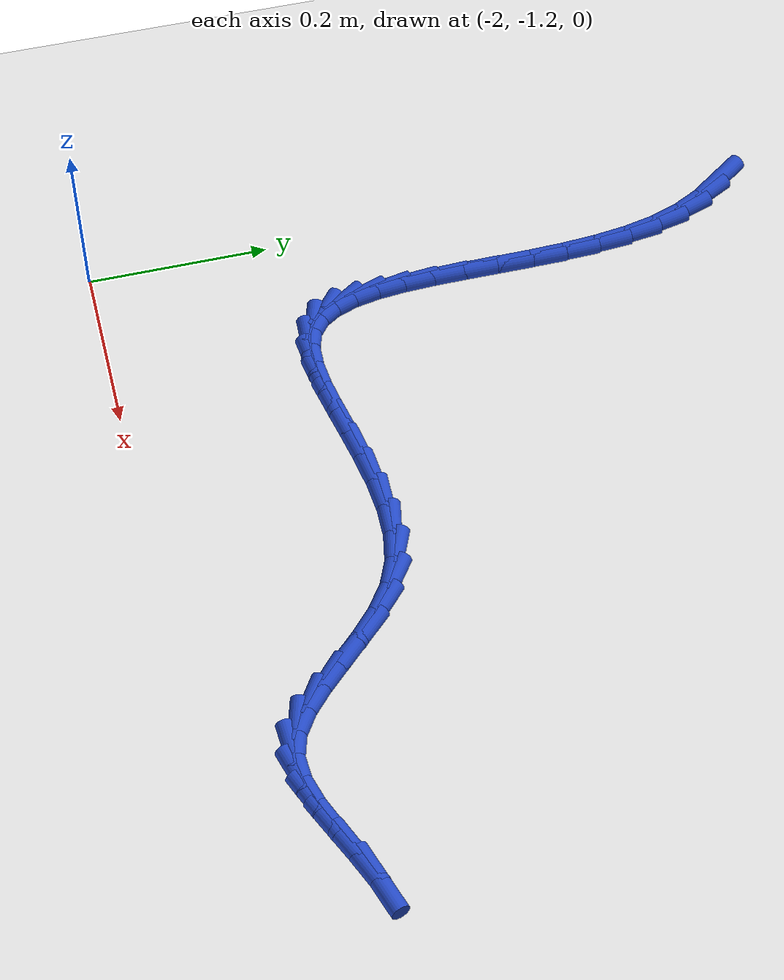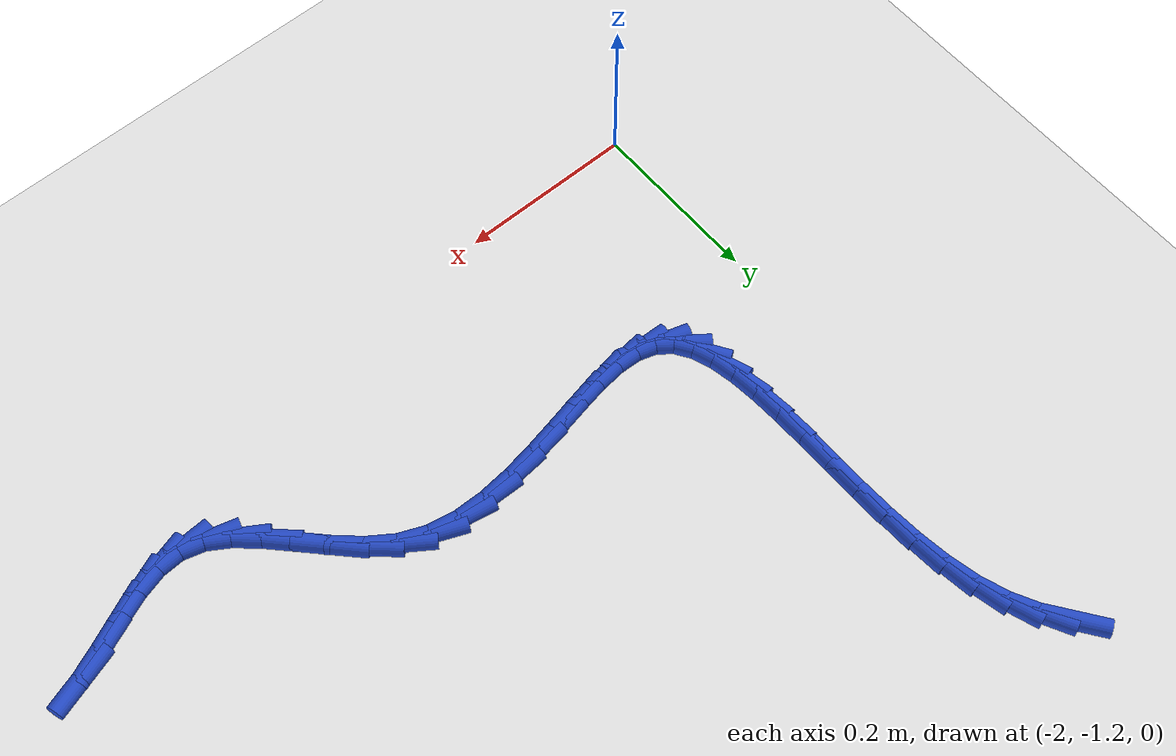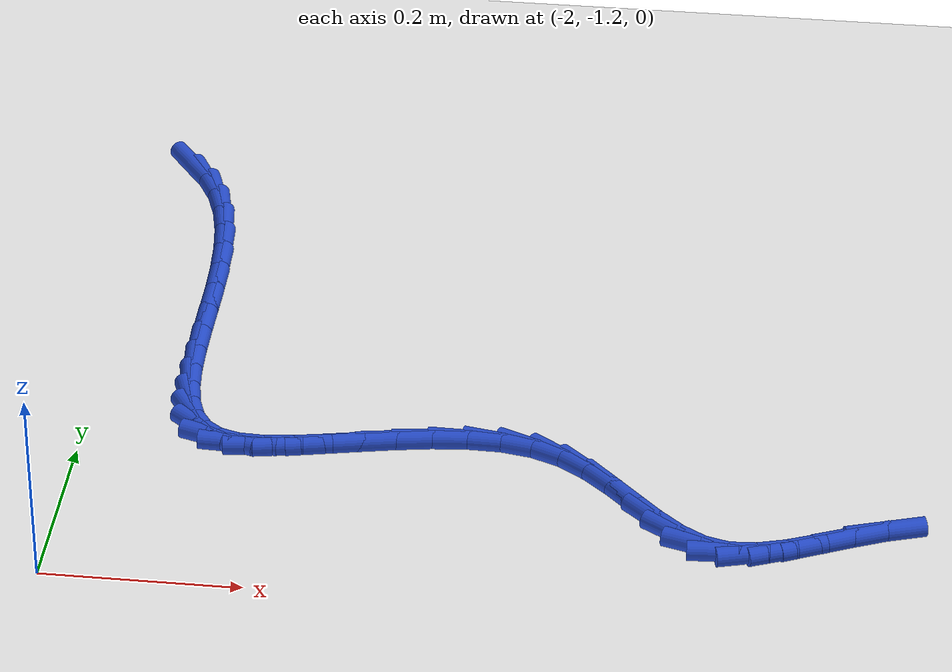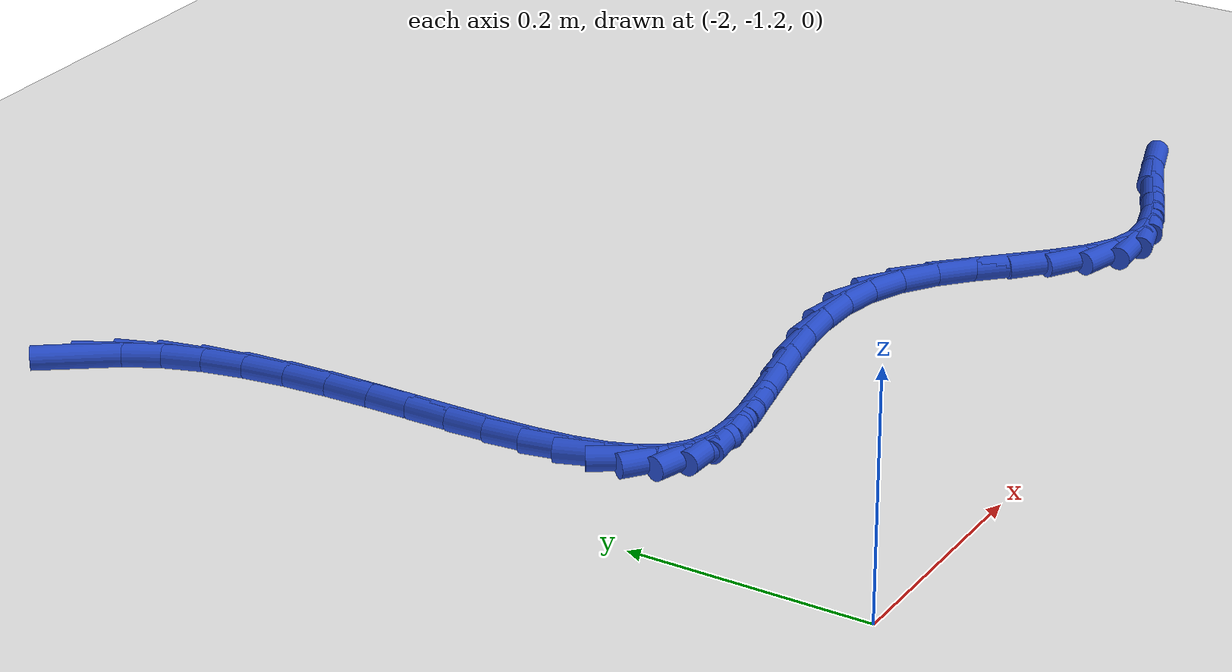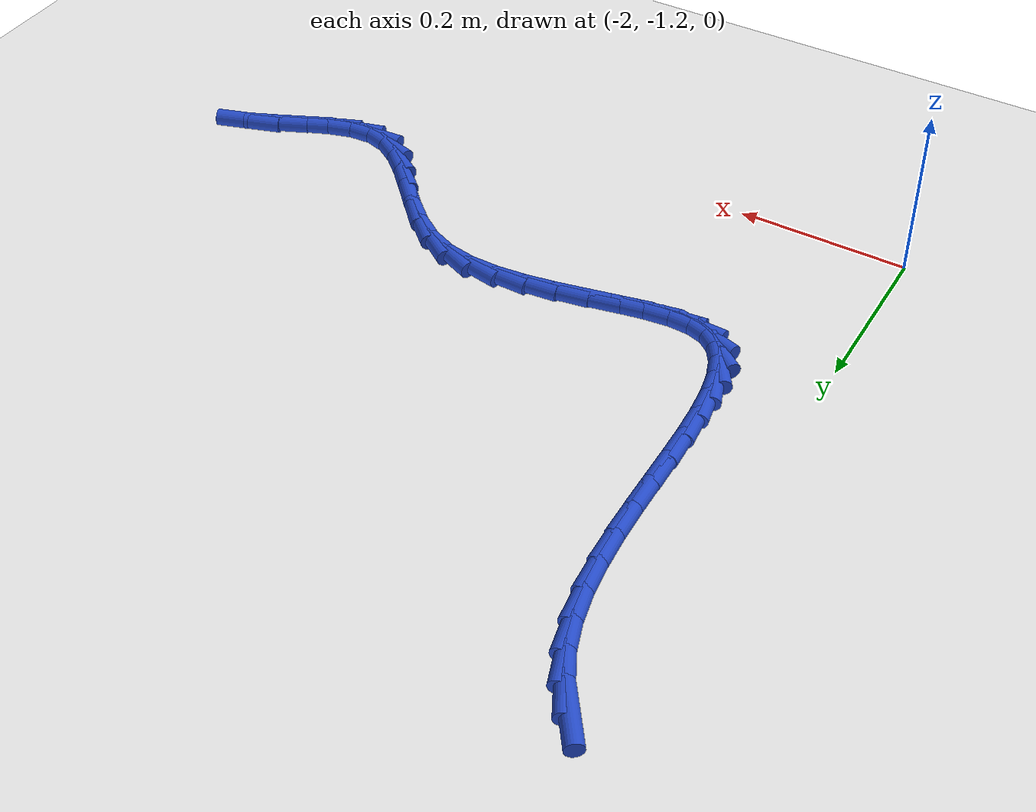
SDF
<sdf version="1.6">
 <world name="default">
  <model name="ground_plane">
   <static>1</static>
   <link name="link">
    <collision name="collision">
     <geometry><plane><normal>0 0 1</normal><size>100 100</size></plane></geometry>
     <surface><friction><ode><mu>100</mu><mu2>50</mu2></ode></friction></surface>
    </collision>
    <visual name="visual">
     <cast_shadows>0</cast_shadows>
     <geometry><plane><normal>0 0 1</normal><size>100 100</size></plane></geometry>
     <material>
      <script><uri>file://media/materials/scripts/gazebo.material</uri><name>Gazebo/WhiteGlow</name></script>
     </material>
    </visual>
   </link>
  </model>
  <model name="line">
   <link name="link_144">
    <pose>-1.9700768346649906 -0.47930693510490385 0.01 0 1.57 -0.944026588098812</pose>
    <collision name="collision">
     <geometry><cylinder><radius>0.01</radius><length>0.08</length></cylinder></geometry>
    </collision>
    <visual name="visual">
     <material>
      <script><name>Gazebo/Blue</name><uri>file://media/materials/scripts/gazebo.material</uri></script>
     </material>
     <geometry><cylinder><radius>0.01</radius><length>0.08</length></cylinder></geometry>
    </visual>
   </link>
   <link name="link_145">
    <pose>-1.9513391072345336 -0.5051813825997775 0.01 0 1.57 -1.0889664984056158</pose>
    <collision name="collision">
     <geometry><cylinder><radius>0.01</radius><length>0.08</length></cylinder></geometry>
    </collision>
    <visual name="visual">
     <material>
      <script><name>Gazebo/Blue</name><uri>file://media/materials/scripts/gazebo.material</uri></script>
     </material>
     <geometry><cylinder><radius>0.01</radius><length>0.08</length></cylinder></geometry>
    </visual>
   </link>
   <link name="link_146">
    <pose>-1.9362185127895413 -0.5340960342596621 0.01 0 1.57 -1.2381353585981523</pose>
    <collision name="collision">
     <geometry><cylinder><radius>0.01</radius><length>0.08</length></cylinder></geometry>
    </collision>
    <visual name="visual">
     <material>
      <script><name>Gazebo/Blue</name><uri>file://media/materials/scripts/gazebo.material</uri></script>
     </material>
     <geometry><cylinder><radius>0.01</radius><length>0.08</length></cylinder></geometry>
    </visual>
   </link>
   <link name="link_147">
    <pose>-1.9250966259106952 -0.5662866645914484 0.01 0 1.57 -1.354333770220363</pose>
    <collision name="collision">
     <geometry><cylinder><radius>0.01</radius><length>0.08</length></cylinder></geometry>
    </collision>
    <visual name="visual">
     <material>
      <script><name>Gazebo/Blue</name><uri>file://media/materials/scripts/gazebo.material</uri></script>
     </material>
     <geometry><cylinder><radius>0.01</radius><length>0.08</length></cylinder></geometry>
    </visual>
   </link>
   <link name="link_148">
    <pose>-1.9174304028462414 -0.6011477103152719 0.01 0 1.57 -1.4398178696771071</pose>
    <collision name="collision">
     <geometry><cylinder><radius>0.01</radius><length>0.08</length></cylinder></geometry>
    </collision>
    <visual name="visual">
     <material>
      <script><name>Gazebo/Blue</name><uri>file://media/materials/scripts/gazebo.material</uri></script>
     </material>
     <geometry><cylinder><radius>0.01</radius><length>0.08</length></cylinder></geometry>
    </visual>
   </link>
   <link name="link_149">
    <pose>-1.9125779108935348 -0.6379836261466344 0.01 0 1.57 -1.5005806712463832</pose>
    <collision name="collision">
     <geometry><cylinder><radius>0.01</radius><length>0.08</length></cylinder></geometry>
    </collision>
    <visual name="visual">
     <material>
      <script><name>Gazebo/Blue</name><uri>file://media/materials/scripts/gazebo.material</uri></script>
     </material>
     <geometry><cylinder><radius>0.01</radius><length>0.08</length></cylinder></geometry>
    </visual>
   </link>
   <link name="link_150">
    <pose>-1.9098972173499311 -0.6760988668010363 0.01 0 1.57 -1.5410671819976716</pose>
    <collision name="collision">
     <geometry><cylinder><radius>0.01</radius><length>0.08</length></cylinder></geometry>
    </collision>
    <visual name="visual">
     <material>
      <script><name>Gazebo/Blue</name><uri>file://media/materials/scripts/gazebo.material</uri></script>
     </material>
     <geometry><cylinder><radius>0.01</radius><length>0.08</length></cylinder></geometry>
    </visual>
   </link>
   <link name="link_151">
    <pose>-1.9087463895127863 -0.7147978869939785 0.01 0 1.57 -1.5639834356052433</pose>
    <collision name="collision">
     <geometry><cylinder><radius>0.01</radius><length>0.08</length></cylinder></geometry>
    </collision>
    <visual name="visual">
     <material>
      <script><name>Gazebo/Blue</name><uri>file://media/materials/scripts/gazebo.material</uri></script>
     </material>
     <geometry><cylinder><radius>0.01</radius><length>0.08</length></cylinder></geometry>
    </visual>
   </link>
   <link name="link_152">
    <pose>-1.908483494679455 -0.7533851414409619 0.01 0 1.57 -1.570349144255475</pose>
    <collision name="collision">
     <geometry><cylinder><radius>0.01</radius><length>0.08</length></cylinder></geometry>
    </collision>
    <visual name="visual">
     <material>
      <script><name>Gazebo/Blue</name><uri>file://media/materials/scripts/gazebo.material</uri></script>
     </material>
     <geometry><cylinder><radius>0.01</radius><length>0.08</length></cylinder></geometry>
    </visual>
   </link>
   <link name="link_153">
    <pose>-1.9084666001472927 -0.7911650848574869 0.01 0 1.57 -1.5594169921354328</pose>
    <collision name="collision">
     <geometry><cylinder><radius>0.01</radius><length>0.08</length></cylinder></geometry>
    </collision>
    <visual name="visual">
     <material>
      <script><name>Gazebo/Blue</name><uri>file://media/materials/scripts/gazebo.material</uri></script>
     </material>
     <geometry><cylinder><radius>0.01</radius><length>0.08</length></cylinder></geometry>
    </visual>
   </link>
   <link name="link_154">
    <pose>-1.9080537732136553 -0.8274421719590546 0.01 0 1.57 -1.5282531155101458</pose>
    <collision name="collision">
     <geometry><cylinder><radius>0.01</radius><length>0.08</length></cylinder></geometry>
    </collision>
    <visual name="visual">
     <material>
      <script><name>Gazebo/Blue</name><uri>file://media/materials/scripts/gazebo.material</uri></script>
     </material>
     <geometry><cylinder><radius>0.01</radius><length>0.08</length></cylinder></geometry>
    </visual>
   </link>
   <link name="link_155">
    <pose>-1.9066030811758978 -0.8615208574611664 0.01 0 1.57 -1.470746187760136</pose>
    <collision name="collision">
     <geometry><cylinder><radius>0.01</radius><length>0.08</length></cylinder></geometry>
    </collision>
    <visual name="visual">
     <material>
      <script><name>Gazebo/Blue</name><uri>file://media/materials/scripts/gazebo.material</uri></script>
     </material>
     <geometry><cylinder><radius>0.01</radius><length>0.08</length></cylinder></geometry>
    </visual>
   </link>
   <link name="link_156">
    <pose>-1.903472591331376 -0.8927055960793212 0.01 0 1.57 -1.3757304586446777</pose>
    <collision name="collision">
     <geometry><cylinder><radius>0.01</radius><length>0.08</length></cylinder></geometry>
    </collision>
    <visual name="visual">
     <material>
      <script><name>Gazebo/Blue</name><uri>file://media/materials/scripts/gazebo.material</uri></script>
     </material>
     <geometry><cylinder><radius>0.01</radius><length>0.08</length></cylinder></geometry>
    </visual>
   </link>
   <link name="link_157">
    <pose>-1.8980203709774446 -0.9203008425290207 0.01 0 1.57 -1.224321673040869</pose>
    <collision name="collision">
     <geometry><cylinder><radius>0.01</radius><length>0.08</length></cylinder></geometry>
    </collision>
    <visual name="visual">
     <material>
      <script><name>Gazebo/Blue</name><uri>file://media/materials/scripts/gazebo.material</uri></script>
     </material>
     <geometry><cylinder><radius>0.01</radius><length>0.08</length></cylinder></geometry>
    </visual>
   </link>
   <link name="link_158">
    <pose>-1.8896044874114597 -0.9436110515257657 0.01 0 1.57 -0.990319840100151</pose>
    <collision name="collision">
     <geometry><cylinder><radius>0.01</radius><length>0.08</length></cylinder></geometry>
    </collision>
    <visual name="visual">
     <material>
      <script><name>Gazebo/Blue</name><uri>file://media/materials/scripts/gazebo.material</uri></script>
     </material>
     <geometry><cylinder><radius>0.01</radius><length>0.08</length></cylinder></geometry>
    </visual>
   </link>
   <link name="link_159">
    <pose>-1.8775830079307767 -0.9619406777850571 0.01 0 1.57 -0.6610364770215414</pose>
    <collision name="collision">
     <geometry><cylinder><radius>0.01</radius><length>0.08</length></cylinder></geometry>
    </collision>
    <visual name="visual">
     <material>
      <script><name>Gazebo/Blue</name><uri>file://media/materials/scripts/gazebo.material</uri></script>
     </material>
     <geometry><cylinder><radius>0.01</radius><length>0.08</length></cylinder></geometry>
    </visual>
   </link>
   <link name="link_160">
    <pose>-1.8613139998327506 -0.9745941760223951 0.01 0 1.57 -0.29840996526860125</pose>
    <collision name="collision">
     <geometry><cylinder><radius>0.01</radius><length>0.08</length></cylinder></geometry>
    </collision>
    <visual name="visual">
     <material>
      <script><name>Gazebo/Blue</name><uri>file://media/materials/scripts/gazebo.material</uri></script>
     </material>
     <geometry><cylinder><radius>0.01</radius><length>0.08</length></cylinder></geometry>
    </visual>
   </link>
   <link name="link_161">
    <pose>-1.8402849842392806 -0.98106259441665 0.01 0 1.57 -0.042119388394122194</pose>
    <collision name="collision">
     <geometry><cylinder><radius>0.01</radius><length>0.08</length></cylinder></geometry>
    </collision>
    <visual name="visual">
     <material>
      <script><name>Gazebo/Blue</name><uri>file://media/materials/scripts/gazebo.material</uri></script>
     </material>
     <geometry><cylinder><radius>0.01</radius><length>0.08</length></cylinder></geometry>
    </visual>
   </link>
   <link name="link_162">
    <pose>-1.8148827347472671 -0.9821331547773025 0.01 0 1.57 0.10271678603291168</pose>
    <collision name="collision">
     <geometry><cylinder><radius>0.01</radius><length>0.08</length></cylinder></geometry>
    </collision>
    <visual name="visual">
     <material>
      <script><name>Gazebo/Blue</name><uri>file://media/materials/scripts/gazebo.material</uri></script>
     </material>
     <geometry><cylinder><radius>0.01</radius><length>0.08</length></cylinder></geometry>
    </visual>
   </link>
   <link name="link_163">
    <pose>-1.7858756258428814 -0.979143114664451 0.01 0 1.57 0.1774780551305565</pose>
    <collision name="collision">
     <geometry><cylinder><radius>0.01</radius><length>0.08</length></cylinder></geometry>
    </collision>
    <visual name="visual">
     <material>
      <script><name>Gazebo/Blue</name><uri>file://media/materials/scripts/gazebo.material</uri></script>
     </material>
     <geometry><cylinder><radius>0.01</radius><length>0.08</length></cylinder></geometry>
    </visual>
   </link>
   <link name="link_164">
    <pose>-1.7540334173929164 -0.9734317285121362 0.01 0 1.57 0.20622638900077636</pose>
    <collision name="collision">
     <geometry><cylinder><radius>0.01</radius><length>0.08</length></cylinder></geometry>
    </collision>
    <visual name="visual">
     <material>
      <script><name>Gazebo/Blue</name><uri>file://media/materials/scripts/gazebo.material</uri></script>
     </material>
     <geometry><cylinder><radius>0.01</radius><length>0.08</length></cylinder></geometry>
    </visual>
   </link>
   <link name="link_165">
    <pose>-1.7201258692641657 -0.9663382507544002 0.01 0 1.57 0.20000784764928978</pose>
    <collision name="collision">
     <geometry><cylinder><radius>0.01</radius><length>0.08</length></cylinder></geometry>
    </collision>
    <visual name="visual">
     <material>
      <script><name>Gazebo/Blue</name><uri>file://media/materials/scripts/gazebo.material</uri></script>
     </material>
     <geometry><cylinder><radius>0.01</radius><length>0.08</length></cylinder></geometry>
    </visual>
   </link>
   <link name="link_166">
    <pose>-1.6849227413234233 -0.9592019358252837 0.01 0 1.57 0.1620173554596145</pose>
    <collision name="collision">
     <geometry><cylinder><radius>0.01</radius><length>0.08</length></cylinder></geometry>
    </collision>
    <visual name="visual">
     <material>
      <script><name>Gazebo/Blue</name><uri>file://media/materials/scripts/gazebo.material</uri></script>
     </material>
     <geometry><cylinder><radius>0.01</radius><length>0.08</length></cylinder></geometry>
    </visual>
   </link>
   <link name="link_167">
    <pose>-1.649193793437484 -0.9533620381588283 0.01 0 1.57 0.09005379205441533</pose>
    <collision name="collision">
     <geometry><cylinder><radius>0.01</radius><length>0.08</length></cylinder></geometry>
    </collision>
    <visual name="visual">
     <material>
      <script><name>Gazebo/Blue</name><uri>file://media/materials/scripts/gazebo.material</uri></script>
     </material>
     <geometry><cylinder><radius>0.01</radius><length>0.08</length></cylinder></geometry>
    </visual>
   </link>
   <link name="link_168">
    <pose>-1.613708785473141 -0.9501578121890749 0.01 0 1.57 -0.022354004653145527</pose>
    <collision name="collision">
     <geometry><cylinder><radius>0.01</radius><length>0.08</length></cylinder></geometry>
    </collision>
    <visual name="visual">
     <material>
      <script><name>Gazebo/Blue</name><uri>file://media/materials/scripts/gazebo.material</uri></script>
     </material>
     <geometry><cylinder><radius>0.01</radius><length>0.08</length></cylinder></geometry>
    </visual>
   </link>
   <link name="link_169">
    <pose>-1.5792374772971889 -0.9509285123500653 0.01 0 1.57 -0.18404459621812996</pose>
    <collision name="collision">
     <geometry><cylinder><radius>0.01</radius><length>0.08</length></cylinder></geometry>
    </collision>
    <visual name="visual">
     <material>
      <script><name>Gazebo/Blue</name><uri>file://media/materials/scripts/gazebo.material</uri></script>
     </material>
     <geometry><cylinder><radius>0.01</radius><length>0.08</length></cylinder></geometry>
    </visual>
   </link>
   <link name="link_170">
    <pose>-1.5465496287764204 -0.9570133930758407 0.01 0 1.57 -0.3985870076889187</pose>
    <collision name="collision">
     <geometry><cylinder><radius>0.01</radius><length>0.08</length></cylinder></geometry>
    </collision>
    <visual name="visual">
     <material>
      <script><name>Gazebo/Blue</name><uri>file://media/materials/scripts/gazebo.material</uri></script>
     </material>
     <geometry><cylinder><radius>0.01</radius><length>0.08</length></cylinder></geometry>
    </visual>
   </link>
   <link name="link_171">
    <pose>-1.516399110580523 -0.969710639846206 0.01 0 1.57 -0.6062478120387922</pose>
    <collision name="collision">
     <geometry><cylinder><radius>0.01</radius><length>0.08</length></cylinder></geometry>
    </collision>
    <visual name="visual">
     <material>
      <script><name>Gazebo/Blue</name><uri>file://media/materials/scripts/gazebo.material</uri></script>
     </material>
     <geometry><cylinder><radius>0.01</radius><length>0.08</length></cylinder></geometry>
    </visual>
   </link>
   <link name="link_172">
    <pose>-1.4889342717464589 -0.9887533407950746 0.01 0 1.57 -0.7379388366511566</pose>
    <collision name="collision">
     <geometry><cylinder><radius>0.01</radius><length>0.08</length></cylinder></geometry>
    </collision>
    <visual name="visual">
     <material>
      <script><name>Gazebo/Blue</name><uri>file://media/materials/scripts/gazebo.material</uri></script>
     </material>
     <geometry><cylinder><radius>0.01</radius><length>0.08</length></cylinder></geometry>
    </visual>
   </link>
   <link name="link_173">
    <pose>-1.4635238368054337 -1.011859481409628 0.01 0 1.57 -0.8000707131232063</pose>
    <collision name="collision">
     <geometry><cylinder><radius>0.01</radius><length>0.08</length></cylinder></geometry>
    </collision>
    <visual name="visual">
     <material>
      <script><name>Gazebo/Blue</name><uri>file://media/materials/scripts/gazebo.material</uri></script>
     </material>
     <geometry><cylinder><radius>0.01</radius><length>0.08</length></cylinder></geometry>
    </visual>
   </link>
   <link name="link_174">
    <pose>-1.4394851218759301 -1.0366141713787893 0.01 0 1.57 -0.7988890394531069</pose>
    <collision name="collision">
     <geometry><cylinder><radius>0.01</radius><length>0.08</length></cylinder></geometry>
    </collision>
    <visual name="visual">
     <material>
      <script><name>Gazebo/Blue</name><uri>file://media/materials/scripts/gazebo.material</uri></script>
     </material>
     <geometry><cylinder><radius>0.01</radius><length>0.08</length></cylinder></geometry>
    </visual>
   </link>
   <link name="link_175">
    <pose>-1.4161354430764304 -1.0606025203914813 0.01 0 1.57 -0.7280165307194267</pose>
    <collision name="collision">
     <geometry><cylinder><radius>0.01</radius><length>0.08</length></cylinder></geometry>
    </collision>
    <visual name="visual">
     <material>
      <script><name>Gazebo/Blue</name><uri>file://media/materials/scripts/gazebo.material</uri></script>
     </material>
     <geometry><cylinder><radius>0.01</radius><length>0.08</length></cylinder></geometry>
    </visual>
   </link>
   <link name="link_176">
    <pose>-1.3927921165254165 -1.0814096381366274 0.01 0 1.57 -0.5645261878851303</pose>
    <collision name="collision">
     <geometry><cylinder><radius>0.01</radius><length>0.08</length></cylinder></geometry>
    </collision>
    <visual name="visual">
     <material>
      <script><name>Gazebo/Blue</name><uri>file://media/materials/scripts/gazebo.material</uri></script>
     </material>
     <geometry><cylinder><radius>0.01</radius><length>0.08</length></cylinder></geometry>
    </visual>
   </link>
   <link name="link_177">
    <pose>-1.3687724583413707 -1.0966206343031508 0.01 0 1.57 -0.2772234976692953</pose>
    <collision name="collision">
     <geometry><cylinder><radius>0.01</radius><length>0.08</length></cylinder></geometry>
    </collision>
    <visual name="visual">
     <material>
      <script><name>Gazebo/Blue</name><uri>file://media/materials/scripts/gazebo.material</uri></script>
     </material>
     <geometry><cylinder><radius>0.01</radius><length>0.08</length></cylinder></geometry>
    </visual>
   </link>
   <link name="link_178">
    <pose>-1.343397596233113 -1.1038410673483599 0.01 0 1.57 0.055571053297356114</pose>
    <collision name="collision">
     <geometry><cylinder><radius>0.01</radius><length>0.08</length></cylinder></geometry>
    </collision>
    <visual name="visual">
     <material>
      <script><name>Gazebo/Blue</name><uri>file://media/materials/scripts/gazebo.material</uri></script>
     </material>
     <geometry><cylinder><radius>0.01</radius><length>0.08</length></cylinder></geometry>
    </visual>
   </link>
   <link name="link_179">
    <pose>-1.3162975252940252 -1.1023335357183677 0.01 0 1.57 0.27608020893672863</pose>
    <collision name="collision">
     <geometry><cylinder><radius>0.01</radius><length>0.08</length></cylinder></geometry>
    </collision>
    <visual name="visual">
     <material>
      <script><name>Gazebo/Blue</name><uri>file://media/materials/scripts/gazebo.material</uri></script>
     </material>
     <geometry><cylinder><radius>0.01</radius><length>0.08</length></cylinder></geometry>
    </visual>
   </link>
   <link name="link_180">
    <pose>-1.2876338533638123 -1.0942126825336065 0.01 0 1.57 0.39002027302882</pose>
    <collision name="collision">
     <geometry><cylinder><radius>0.01</radius><length>0.08</length></cylinder></geometry>
    </collision>
    <visual name="visual">
     <material>
      <script><name>Gazebo/Blue</name><uri>file://media/materials/scripts/gazebo.material</uri></script>
     </material>
     <geometry><cylinder><radius>0.01</radius><length>0.08</length></cylinder></geometry>
    </visual>
   </link>
   <link name="link_181">
    <pose>-1.257620709381029 -1.0818749209083631 0.01 0 1.57 0.4266236012007524</pose>
    <collision name="collision">
     <geometry><cylinder><radius>0.01</radius><length>0.08</length></cylinder></geometry>
    </collision>
    <visual name="visual">
     <material>
      <script><name>Gazebo/Blue</name><uri>file://media/materials/scripts/gazebo.material</uri></script>
     </material>
     <geometry><cylinder><radius>0.01</radius><length>0.08</length></cylinder></geometry>
    </visual>
   </link>
   <link name="link_182">
    <pose>-1.2264722222842304 -1.0677166639569244 0.01 0 1.57 0.4006211466587301</pose>
    <collision name="collision">
     <geometry><cylinder><radius>0.01</radius><length>0.08</length></cylinder></geometry>
    </collision>
    <visual name="visual">
     <material>
      <script><name>Gazebo/Blue</name><uri>file://media/materials/scripts/gazebo.material</uri></script>
     </material>
     <geometry><cylinder><radius>0.01</radius><length>0.08</length></cylinder></geometry>
    </visual>
   </link>
   <link name="link_183">
    <pose>-1.1944025210119718 -1.0541343247935773 0.01 0 1.57 0.3130601312677599</pose>
    <collision name="collision">
     <geometry><cylinder><radius>0.01</radius><length>0.08</length></cylinder></geometry>
    </collision>
    <visual name="visual">
     <material>
      <script><name>Gazebo/Blue</name><uri>file://media/materials/scripts/gazebo.material</uri></script>
     </material>
     <geometry><cylinder><radius>0.01</radius><length>0.08</length></cylinder></geometry>
    </visual>
   </link>
  </model>
 </world>
</sdf>
